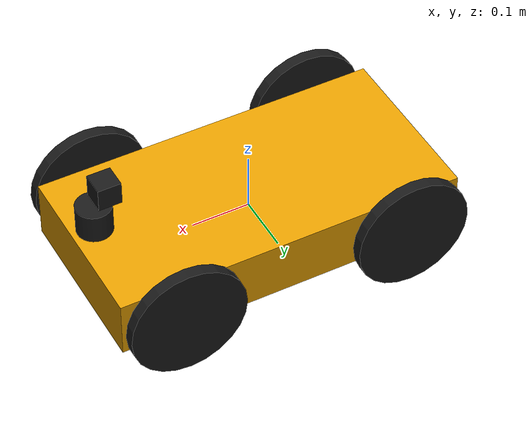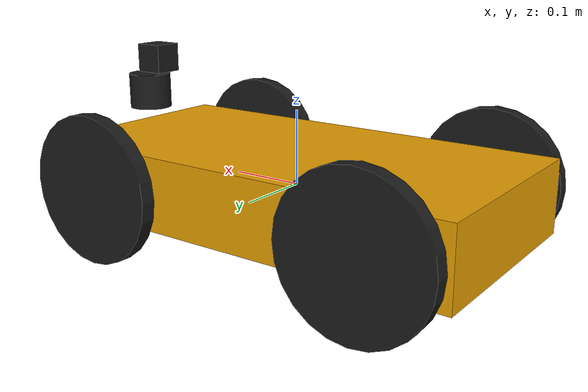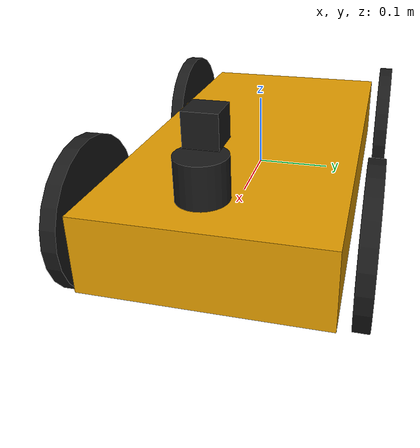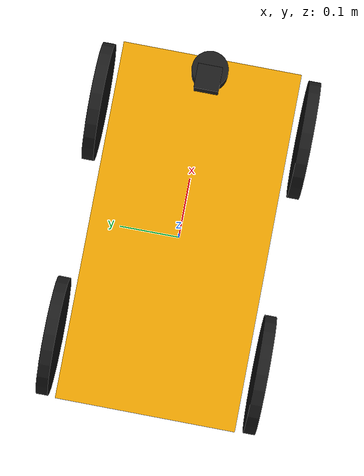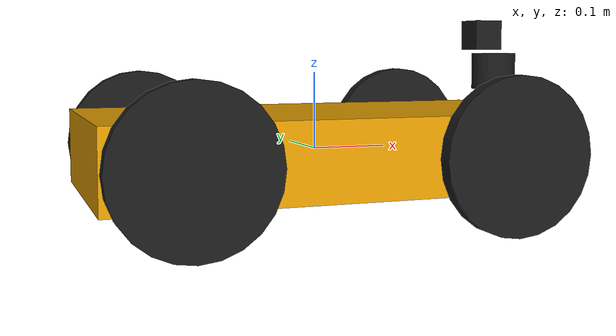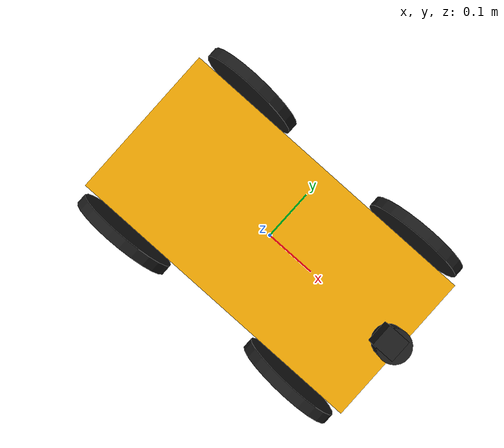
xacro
<?xml version="1.0"?>
<robot name="my_robot" xmlns:xacro="http://www.ros.org/wiki/xacro">

  <!-- Base -->
  <link name="base_link">
    <visual>
      <geometry>
        <box size="0.6 0.3 0.1"/>
      </geometry>
    </visual>

    <collision>
      <geometry>
        <box size="0.6 0.3 0.1"/>
      </geometry>
    </collision>

    <inertial>
      <mass value="5.0"/>
      <origin xyz="0 0 0" rpy="0 0 0"/>
      <inertia ixx="0.0416667" iyy="0.1541667" izz="0.1875"
               ixy="0" ixz="0" iyz="0"/>
    </inertial>
  </link>

  <!-- Left Behind Wheel -->
  <link name="left_behind_wheel">
  <visual>
    <origin rpy="1.5708 0 0"/>
    <geometry>
      <cylinder radius="0.1" length="0.02"/>
    </geometry>
    <material name="black">
      <color rgba="0.1 0.1 0.1 1.0"/>
    </material>
  </visual>

  <collision>
    <origin rpy="1.5708 0 0"/>
    <geometry>
      <cylinder radius="0.1" length="0.02"/>
    </geometry>
  </collision>

  <inertial>
    <mass value="0.1"/>
    <origin xyz="0 0 0" rpy="0 0 0"/>
    <inertia ixx="0.000253333" iyy="0.0005" izz="0.000253333"
             ixy="0" ixz="0" iyz="0"/>
  </inertial>
</link>

  <!-- Right Behind Wheel -->
  <link name="right_behind_wheel">
  <visual>
    <origin rpy="1.5708 0 0"/>
    <geometry>
      <cylinder radius="0.1" length="0.02"/>
    </geometry>
    <material name="black"/>
  </visual>

  <collision>
    <origin rpy="1.5708 0 0"/>
    <geometry>
      <cylinder radius="0.1" length="0.02"/>
    </geometry>
  </collision>

  <inertial>
    <mass value="0.1"/>
    <origin xyz="0 0 0" rpy="0 0 0"/>
    <inertia ixx="0.000253333" iyy="0.0005" izz="0.000253333"
             ixy="0" ixz="0" iyz="0"/>
  </inertial>
</link>

  <!-- Left Front Wheel -->
<link name="left_front_wheel">
  <visual>
    <origin rpy="1.5708 0 0"/>
    <geometry>
      <cylinder radius="0.1" length="0.02"/>
    </geometry>
    <material name="black"/>
  </visual>

  <collision>
    <origin rpy="1.5708 0 0"/>
    <geometry>
      <cylinder radius="0.1" length="0.02"/>
    </geometry>
  </collision>

  <inertial>
    <mass value="0.1"/>
    <origin xyz="0 0 0" rpy="0 0 0"/>
    <inertia ixx="0.000253333" iyy="0.0005" izz="0.000253333"
             ixy="0" ixz="0" iyz="0"/>
  </inertial>
</link>

  <!-- Right Front Wheel -->
<link name="right_front_wheel">
  <visual>
    <origin rpy="1.5708 0 0"/>
    <geometry>
      <cylinder radius="0.1" length="0.02"/>
    </geometry>
    <material name="black"/>
  </visual>

  <collision>
    <origin rpy="1.5708 0 0"/>
    <geometry>
      <cylinder radius="0.1" length="0.02"/>
    </geometry>
  </collision>

  <inertial>
    <mass value="0.1"/>
    <origin xyz="0 0 0" rpy="0 0 0"/>
    <inertia ixx="0.000253333" iyy="0.0005" izz="0.000253333"
             ixy="0" ixz="0" iyz="0"/>
  </inertial>
</link>

 <!-- LiDAR Link -->
<link name="lidar_link">
  <visual>
    <geometry>
      <cylinder radius="0.03" length="0.05"/>
    </geometry>
    <material name="black"/>
  </visual>

  <collision>
    <geometry>
      <cylinder radius="0.03" length="0.05"/>
    </geometry>
  </collision>

  <inertial>
    <mass value="0.1"/>
    <origin xyz="0 0 0"/>
    <inertia ixx="1e-5" iyy="1e-5" izz="1e-5"
             ixy="0" ixz="0" iyz="0"/>
  </inertial>
</link>

  <!-- LiDAR Joint -->
<joint name="lidar_joint" type="fixed">
  <parent link="base_link"/>
  <child link="lidar_link"/>
  <origin xyz="0.27 0 0.1"/>
</joint>

<!-- ================= CAMERA ================= -->
<link name="camera_link">
  <visual>
    <geometry>
      <box size="0.04 0.04 0.04"/>
    </geometry>
    <material name="black"/>
  </visual>

  <collision>
    <geometry>
      <box size="0.04 0.04 0.04"/>
    </geometry>
  </collision>

  <inertial>
    <mass value="0.05"/>
    <origin xyz="0 0 0"/>
    <inertia ixx="1e-5" iyy="1e-5" izz="1e-5"
             ixy="0" ixz="0" iyz="0"/>
  </inertial>
</link>

<joint name="camera_joint" type="fixed">
  <parent link="base_link"/>
  <child link="camera_link"/>
  <origin xyz="0.25 0 0.15" rpy="0 0 0"/>
</joint>

  <!-- Joints -->
<joint name="left_behind_wheel_joint" type="continuous">
  <parent link="base_link"/>
  <child link="left_behind_wheel"/>
  <origin xyz="-0.2 0.175 0"/>
  <axis xyz="0 1 0"/>
</joint>

<joint name="right_behind_wheel_joint" type="continuous">
  <parent link="base_link"/>
  <child link="right_behind_wheel"/>
  <origin xyz="-0.2 -0.175 0"/>
  <axis xyz="0 1 0"/>
</joint>

<joint name="left_front_wheel_joint" type="continuous">
  <parent link="base_link"/>
  <child link="left_front_wheel"/>
  <origin xyz="0.2 0.175 0"/>
  <axis xyz="0 1 0"/>
</joint>

<joint name="right_front_wheel_joint" type="continuous">
  <parent link="base_link"/>
  <child link="right_front_wheel"/>
  <origin xyz="0.2 -0.175 0"/>
  <axis xyz="0 1 0"/>
</joint>

<gazebo>
  <plugin name="gazebo_joint_state_publisher"
          filename="libgazebo_ros_joint_state_publisher.so">

    <update_rate>50</update_rate>

    <joint_name>left_behind_wheel_joint</joint_name>
    <joint_name>right_behind_wheel_joint</joint_name>
    <joint_name>left_front_wheel_joint</joint_name>
    <joint_name>right_front_wheel_joint</joint_name>

  </plugin>
</gazebo>

<gazebo reference="lidar_link">
  <sensor type="ray" name="lidar_sensor">
    <pose>0 0 0 0 0 0</pose>
    <visualize>true</visualize>
    <update_rate>10</update_rate>

    <ray>
      <scan>
        <horizontal>
          <samples>720</samples>
          <resolution>1</resolution>
          <min_angle>-3.14159</min_angle>
          <max_angle>3.14159</max_angle>
        </horizontal>
      </scan>

      <range>
        <min>0.1</min>
        <max>30.0</max>
        <resolution>0.01</resolution>
      </range>
    </ray>

    <plugin name="gazebo_ros_ray_sensor" filename="libgazebo_ros_ray_sensor.so">
      <ros>
        <remapping>~/out:=scan</remapping>
      </ros>
      <frame_name>lidar_link</frame_name>
    </plugin>
  </sensor>
</gazebo>

<gazebo reference="camera_link">
  <sensor type="camera" name="camera_sensor">
    <pose>0 0 0 0 0 0</pose>
    <update_rate>30</update_rate>
    <visualize>true</visualize>

    <camera>
      <horizontal_fov>1.3962634</horizontal_fov> <!-- ~80 deg -->
      <image>
        <width>640</width>
        <height>480</height>
        <format>R8G8B8</format>
      </image>
      <clip>
        <near>0.05</near>
        <far>100</far>
      </clip>
    </camera>

    <plugin name="gazebo_ros_camera" filename="libgazebo_ros_camera.so">
      <cameraName>camera</cameraName>
      <imageTopicName>image_raw</imageTopicName>
      <cameraInfoTopicName>camera_info</cameraInfoTopicName>
      <frameName>camera_link</frameName>
    </plugin>
  </sensor>
</gazebo>

</robot>
